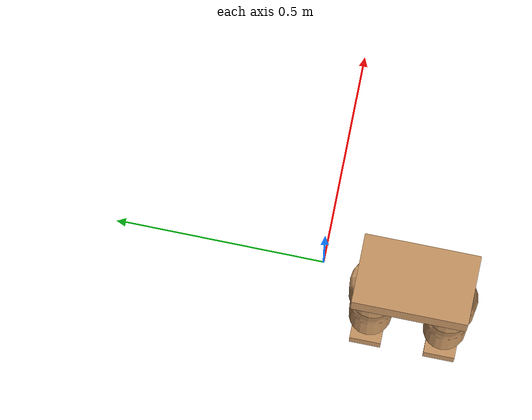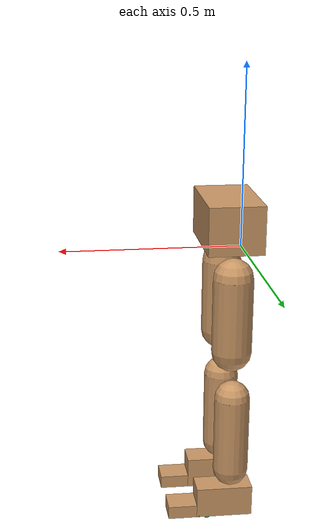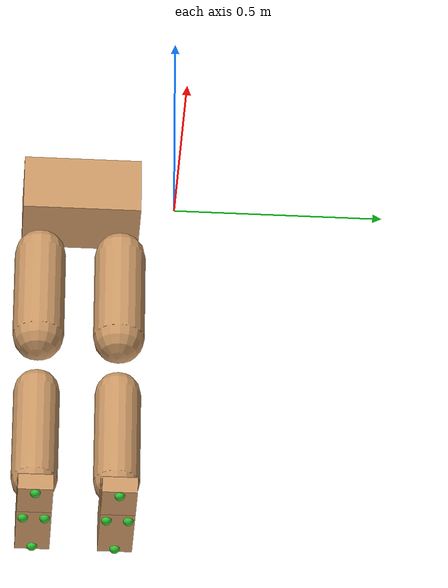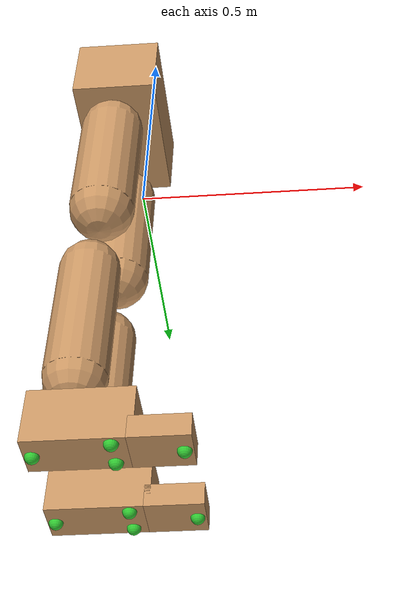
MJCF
<mujoco model="humanoid">
  <compiler coordinate="local"/>
  <default>
    <joint damping="0.0" armature="0.01" stiffness="0.0" limited="true"/>
    <geom conaffinity="1" condim="3" contype="7" margin="0.001" rgba="0.8 0.6 .4 1"/>
  </default>
  <asset>
    <texture type="skybox" builtin="gradient" rgb1=".4 .5 .6" rgb2="0 0 0" width="100" height="100"/>
    <texture builtin="flat" height="1278" mark="cross" markrgb="1 1 1" name="texgeom" random="0.01" rgb1="0.8 0.6 0.4" rgb2="0.8 0.6 0.4" type="cube" width="127"/>
    <texture builtin="checker" height="100" name="texplane" rgb1="0 0 0" rgb2="0.8 0.8 0.8" type="2d" width="100"/>
    <material name="MatPlane" reflectance="0.5" shininess="1" specular="1" texrepeat="60 60" texture="texplane"/>
    <material name="geom" texture="texgeom" texuniform="true"/>
  </asset>
  <worldbody>
    <light cutoff="100" diffuse="1 1 1" dir="-0 0 -1.3" directional="true" exponent="1" pos="0 0 1.3" specular=".1 .1 .1"/>
    <body name="Pelvis" pos="-0.0018 -0.2233 0.0282">
      <freejoint name="Pelvis"/>
      <geom type="box" pos="-0.0055 -0.0000 -0.0121" size="0.083 0.140 0.0722" quat="1.0000 0.0000 0.0000 0.0000" density="1000"/>
      <body name="L_Hip" pos="-0.0066 0.0950 -0.0910">
        <joint name="L_Hip_x" type="hinge" pos="0 0 0" axis="1 0 0" stiffness="250" damping="25" armature="0.02" range="-20.0000 45.0000"/>
        <joint name="L_Hip_y" type="hinge" pos="0 0 0" axis="0 1 0" stiffness="250" damping="25" armature="0.02" range="-30.0000 120.0000"/>
        <joint name="L_Hip_z" type="hinge" pos="0 0 0" axis="0 0 1" stiffness="250" damping="25" armature="0.02" range="-45.0000 45.0000"/>
        <geom type="capsule" contype="1" conaffinity="1" density="2040.816327" fromto="0.0000 0.0000 -0.0750 0.0000 0.0000 -0.3039" size="0.0606"/>
        <body name="L_Knee" pos="-0.0067 0.0000 -0.3789">
          <joint name="L_Knee_x" type="hinge" pos="0 0 0" axis="1 0 0" stiffness="200" damping="20" armature="0.02" range="-10.0000 10.0000"/>
          <joint name="L_Knee_y" type="hinge" pos="0 0 0" axis="0 1 0" stiffness="200" damping="20" armature="0.02" range="-10.0000 150.0000"/>
          <joint name="L_Knee_z" type="hinge" pos="0 0 0" axis="0 0 1" stiffness="200" damping="20" armature="0.02" range="-15.0000 15.0000"/>
          <geom type="capsule" contype="1" conaffinity="1" density="1234.567901" fromto="0.0000 0.0000 -0.0797 0.0000 0.0000 -0.3185" size="0.0541"/>
          <body name="L_Ankle" pos="0.0000 0.0000 -0.3982">
            <joint name="L_Ankle_x" type="hinge" pos="0 0 0" axis="1 0 0" stiffness="150" damping="15" armature="0.02" range="-10.0000 10.0000"/>
            <joint name="L_Ankle_y" type="hinge" pos="0 0 0" axis="0 1 0" stiffness="150" damping="15" armature="0.02" range="-45.0000 20.0000"/>
            <joint name="L_Ankle_z" type="hinge" pos="0 0 0" axis="0 0 1" stiffness="150" damping="15" armature="0.02" range="-10.0000 10.0000"/>
            <geom type="box" pos="0.0225 0.0 -0.0200" size="0.0865 0.04 0.0478" quat="1.0000 0.0000 0.0000 0.0000" density="1000" contype="0" conaffinity="0"/>
            <!-- Left foot contact pads (passive, no joints = welded to parent) -->
            <!-- Heel pad: rear center of foot -->
            <body name="L_Heel" pos="-0.050 0.0 -0.068">
              <geom type="sphere" size="0.012" contype="1" conaffinity="1" density="100" rgba="0.2 0.8 0.2 1"/>
            </body>
            <!-- Metatarsal medial pad: inner ball of foot (1st met head) -->
            <body name="L_MetMedial" pos="0.075 0.025 -0.068">
              <geom type="sphere" size="0.012" contype="1" conaffinity="1" density="100" rgba="0.2 0.8 0.2 1"/>
            </body>
            <!-- Metatarsal lateral pad: outer ball of foot (5th met head) -->
            <body name="L_MetLateral" pos="0.075 -0.025 -0.068">
              <geom type="sphere" size="0.012" contype="1" conaffinity="1" density="100" rgba="0.2 0.8 0.2 1"/>
            </body>
            <body name="L_Toe" pos="0.1233 0.0000 -0.0550">
              <joint name="L_Toe_x" type="hinge" pos="0 0 0" axis="1 0 0" stiffness="75" damping="8" armature="0.02" range="-10.0000 10.0000"/>
              <joint name="L_Toe_y" type="hinge" pos="0 0 0" axis="0 1 0" stiffness="75" damping="8" armature="0.02" range="-20.0000 20.0000"/>
              <joint name="L_Toe_z" type="hinge" pos="0 0 0" axis="0 0 1" stiffness="75" damping="8" armature="0.02" range="-5.0000 5.0000"/>
              <geom type="box" pos="0.0248 0.0 0.007" size="0.0496 0.04 0.02" quat="1.0000 0.0000 0.0000 0.0000" density="1000" contype="0" conaffinity="0"/>
              <!-- Toe tip contact pad -->
              <body name="L_ToeTip" pos="0.060 0.0 -0.013">
                <geom type="sphere" size="0.012" contype="1" conaffinity="1" density="100" rgba="0.2 0.8 0.2 1"/>
              </body>
            </body>
          </body>
        </body>
      </body>
      <body name="R_Hip" pos="-0.0066 -0.0950 -0.0910">
        <joint name="R_Hip_x" type="hinge" pos="0 0 0" axis="1 0 0" stiffness="250" damping="25" armature="0.02" range="-20.0000 45.0000"/>
        <joint name="R_Hip_y" type="hinge" pos="0 0 0" axis="0 1 0" stiffness="250" damping="25" armature="0.02" range="-30.0000 120.0000"/>
        <joint name="R_Hip_z" type="hinge" pos="0 0 0" axis="0 0 1" stiffness="250" damping="25" armature="0.02" range="-15.0000 15.0000"/>
        <geom type="capsule" contype="1" conaffinity="1" density="2040.816327" fromto="0.0000 0.0000 -0.0750 0.0000 0.0000 -0.3039" size="0.0606"/>
        <body name="R_Knee" pos="-0.0067 0.0000 -0.3789">
          <joint name="R_Knee_x" type="hinge" pos="0 0 0" axis="1 0 0" stiffness="200" damping="20" armature="0.02" range="-10.0000 10.0000"/>
          <joint name="R_Knee_y" type="hinge" pos="0 0 0" axis="0 1 0" stiffness="200" damping="20" armature="0.02" range="-10.0000 150.0000"/>
          <joint name="R_Knee_z" type="hinge" pos="0 0 0" axis="0 0 1" stiffness="200" damping="20" armature="0.02" range="-15.0000 15.0000"/>
          <geom type="capsule" contype="1" conaffinity="1" density="1234.567901" fromto="0.0000 0.0000 -0.0797 0.0000 0.0000 -0.3185" size="0.0541"/>
          <body name="R_Ankle" pos="0.0000 0.0000 -0.3982">
            <joint name="R_Ankle_x" type="hinge" pos="0 0 0" axis="1 0 0" stiffness="150" damping="15" armature="0.02" range="-25.0000 25.0000"/>
            <joint name="R_Ankle_y" type="hinge" pos="0 0 0" axis="0 1 0" stiffness="150" damping="15" armature="0.02" range="-45.0000 20.0000"/>
            <joint name="R_Ankle_z" type="hinge" pos="0 0 0" axis="0 0 1" stiffness="150" damping="15" armature="0.02" range="-10.0000 10.0000"/>
            <geom type="box" pos="0.0225 0.0 -0.0200" size="0.0865 0.04 0.0478" quat="1.0000 0.0000 0.0000 0.0000" density="1000" contype="0" conaffinity="0"/>
            <!-- Right foot contact pads (passive, no joints = welded to parent) -->
            <!-- Heel pad: rear center of foot -->
            <body name="R_Heel" pos="-0.050 0.0 -0.068">
              <geom type="sphere" size="0.012" contype="1" conaffinity="1" density="100" rgba="0.2 0.8 0.2 1"/>
            </body>
            <!-- Metatarsal medial pad: inner ball of foot (1st met head) - note Y flipped for right foot -->
            <body name="R_MetMedial" pos="0.075 -0.025 -0.068">
              <geom type="sphere" size="0.012" contype="1" conaffinity="1" density="100" rgba="0.2 0.8 0.2 1"/>
            </body>
            <!-- Metatarsal lateral pad: outer ball of foot (5th met head) -->
            <body name="R_MetLateral" pos="0.075 0.025 -0.068">
              <geom type="sphere" size="0.012" contype="1" conaffinity="1" density="100" rgba="0.2 0.8 0.2 1"/>
            </body>
            <body name="R_Toe" pos="0.1233 0.0000 -0.0550">
              <joint name="R_Toe_x" type="hinge" pos="0 0 0" axis="1 0 0" stiffness="75" damping="8" armature="0.02" range="-10.0000 10.0000"/>
              <joint name="R_Toe_y" type="hinge" pos="0 0 0" axis="0 1 0" stiffness="75" damping="8" armature="0.02" range="-20.0000 20.0000"/>
              <joint name="R_Toe_z" type="hinge" pos="0 0 0" axis="0 0 1" stiffness="75" damping="8" armature="0.02" range="-5.0000 5.0000"/>
              <geom type="box" pos="0.0248 0.0 0.007" size="0.0496 0.04 0.02" quat="1.0000 0.0000 0.0000 0.0000" density="1000" contype="0" conaffinity="0"/>
              <!-- Toe tip contact pad -->
              <body name="R_ToeTip" pos="0.060 0.0 -0.013">
                <geom type="sphere" size="0.012" contype="1" conaffinity="1" density="100" rgba="0.2 0.8 0.2 1"/>
              </body>
            </body>
          </body>
        </body>
      </body>
    </body>
  </worldbody>
  <actuator>
    <motor name="L_Hip_x" joint="L_Hip_x" gear="500"/>
    <motor name="L_Hip_y" joint="L_Hip_y" gear="500"/>
    <motor name="L_Hip_z" joint="L_Hip_z" gear="500"/>
    <motor name="L_Knee_x" joint="L_Knee_x" gear="500"/>
    <motor name="L_Knee_y" joint="L_Knee_y" gear="500"/>
    <motor name="L_Knee_z" joint="L_Knee_z" gear="500"/>
    <motor name="L_Ankle_x" joint="L_Ankle_x" gear="500"/>
    <motor name="L_Ankle_y" joint="L_Ankle_y" gear="500"/>
    <motor name="L_Ankle_z" joint="L_Ankle_z" gear="500"/>
    <motor name="L_Toe_x" joint="L_Toe_x" gear="500"/>
    <motor name="L_Toe_y" joint="L_Toe_y" gear="500"/>
    <motor name="L_Toe_z" joint="L_Toe_z" gear="500"/>
    <motor name="R_Hip_x" joint="R_Hip_x" gear="500"/>
    <motor name="R_Hip_y" joint="R_Hip_y" gear="500"/>
    <motor name="R_Hip_z" joint="R_Hip_z" gear="500"/>
    <motor name="R_Knee_x" joint="R_Knee_x" gear="500"/>
    <motor name="R_Knee_y" joint="R_Knee_y" gear="500"/>
    <motor name="R_Knee_z" joint="R_Knee_z" gear="500"/>
    <motor name="R_Ankle_x" joint="R_Ankle_x" gear="500"/>
    <motor name="R_Ankle_y" joint="R_Ankle_y" gear="500"/>
    <motor name="R_Ankle_z" joint="R_Ankle_z" gear="500"/>
    <motor name="R_Toe_x" joint="R_Toe_x" gear="500"/>
    <motor name="R_Toe_y" joint="R_Toe_y" gear="500"/>
    <motor name="R_Toe_z" joint="R_Toe_z" gear="500"/>
  </actuator>
</mujoco>
